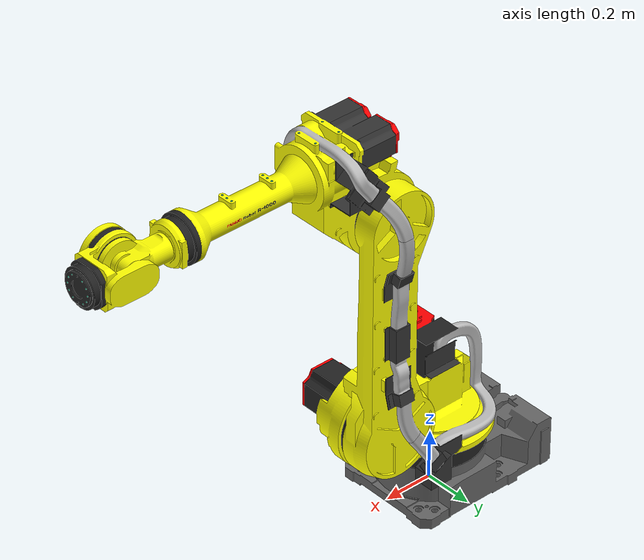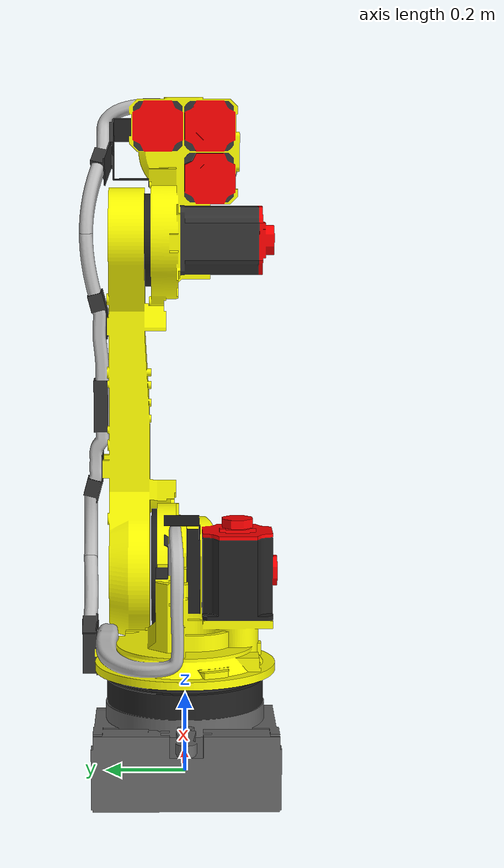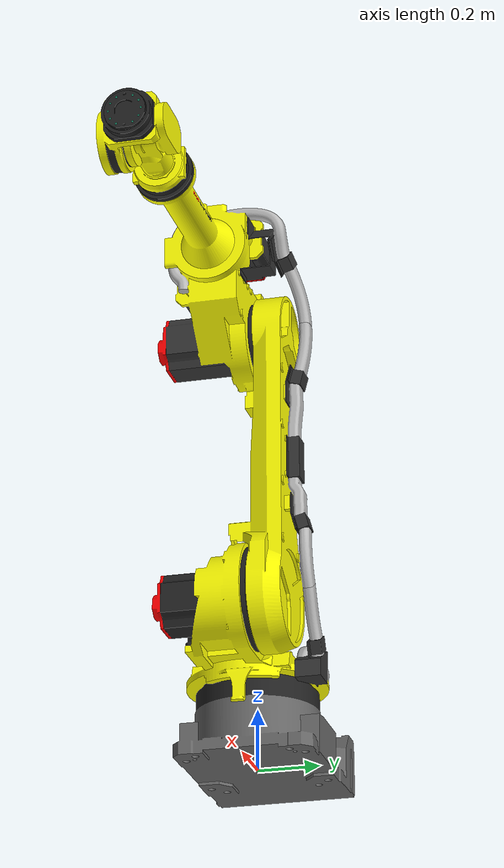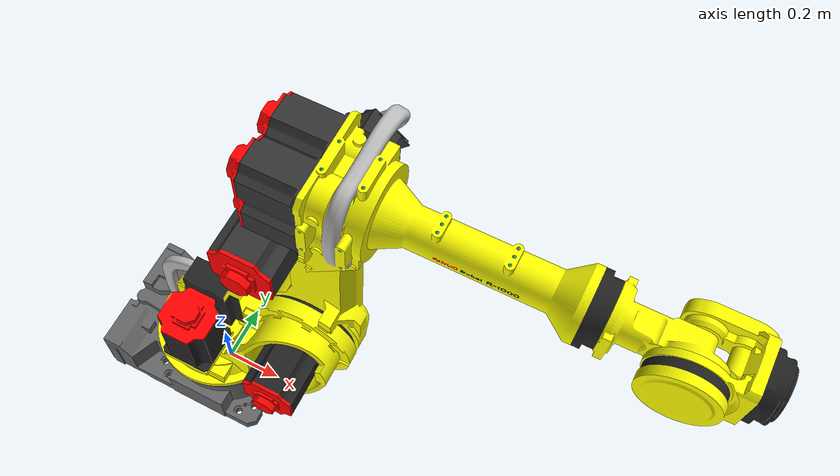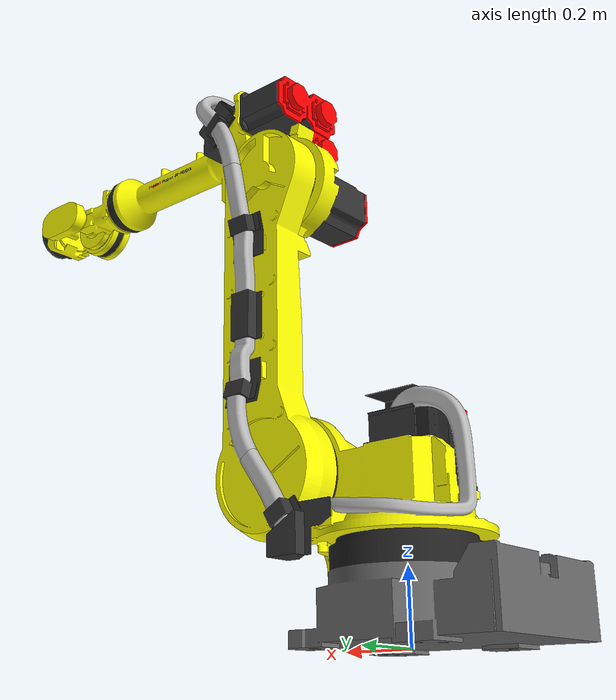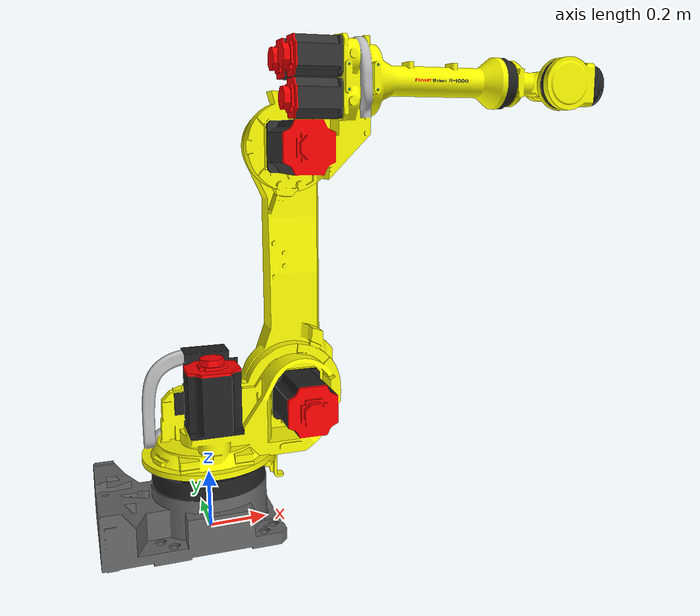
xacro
<?xml version="1.0" ?>
<robot name="r1000ia_100f" xmlns:xacro="http://wiki.ros.org/xacro">
  <xacro:include
    filename="$(find fanuc_r1000ia_description)/urdf/r1000ia_100f_urdf_macro.xacro"
  />

  <link name="world" />
  <link name="ee_link" />
  <xacro:r1000ia_100f parent="world" child="ee_link">
    <origin xyz="0 0 0" rpy="0 0 0" />
  </xacro:r1000ia_100f>
</robot>

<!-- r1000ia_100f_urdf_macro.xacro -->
<!--
SPDX-FileCopyrightText: 2025-2026, FANUC America Corporation
SPDX-FileCopyrightText: 2025-2026, FANUC CORPORATION
SPDX-License-Identifier: Apache-2.0
-->
<!-- URDF for R-1000/100F-22A(R-1000iA/100F) -->
<robot xmlns:xacro="http://wiki.ros.org/xacro">
  <xacro:macro
    name="r1000ia_100f"
    params="prefix=''
            parent
            *origin
            child"
  >

    <xacro:property name="j1_lower_limit" value="${radians(-180)}" />
    <xacro:property name="j2_lower_limit" value="${radians(-90)}" />
    <xacro:property name="j3_lower_limit" value="${radians(-82)}" />
    <xacro:property name="j4_lower_limit" value="${radians(-360)}" />
    <xacro:property name="j5_lower_limit" value="${radians(-125)}" />
    <xacro:property name="j6_lower_limit" value="${radians(-360)}" />

    <xacro:property name="j1_upper_limit" value="${radians(180)}" />
    <xacro:property name="j2_upper_limit" value="${radians(155)}" />
    <xacro:property name="j3_upper_limit" value="${radians(140)}" />
    <xacro:property name="j4_upper_limit" value="${radians(360)}" />
    <xacro:property name="j5_upper_limit" value="${radians(125)}" />
    <xacro:property name="j6_upper_limit" value="${radians(360)}" />

    <xacro:property name="j1_effort_limit" value="9000" />
    <xacro:property name="j2_effort_limit" value="20000" />
    <xacro:property name="j3_effort_limit" value="8000" />
    <xacro:property name="j4_effort_limit" value="3000" />
    <xacro:property name="j5_effort_limit" value="3000" />
    <xacro:property name="j6_effort_limit" value="2000" />

    <xacro:property name="j1_velocity_limit" value="${radians(130)}" />
    <xacro:property name="j2_velocity_limit" value="${radians(110)}" />
    <xacro:property name="j3_velocity_limit" value="${radians(120)}" />
    <xacro:property name="j4_velocity_limit" value="${radians(170)}" />
    <xacro:property name="j5_velocity_limit" value="${radians(170)}" />
    <xacro:property name="j6_velocity_limit" value="${radians(250)}" />

    <!-- links -->
    <link name="${prefix}base_link">
      <visual>
        <origin xyz="0 0 0" rpy="0 0 0" />
        <geometry>
          <mesh
            filename="package://fanuc_r1000ia_description/meshes/r1000ia_100f/visual/base.dae"
          />
        </geometry>
      </visual>
      <collision>
        <origin xyz="0 0 0" rpy="0 0 0" />
        <geometry>
          <mesh
            filename="package://fanuc_r1000ia_description/meshes/r1000ia_100f/collision/base.stl"
          />
        </geometry>
      </collision>
      <inertial>
        <mass value=" 137" />
        <origin xyz="-.129  .0048  .117" />
        <inertia
          ixx=" 2.71"
          ixy=" .241"
          ixz="-.158"
          iyy=" 6.08"
          iyz=" .015"
          izz=" 7.49"
        />
      </inertial>
    </link>

    <link name="${prefix}J1_link">
      <visual>
        <origin xyz="0 0 0" rpy="0 0 0" />
        <geometry>
          <mesh
            filename="package://fanuc_r1000ia_description/meshes/r1000ia_100f/visual/j1.dae"
          />
        </geometry>
      </visual>
      <collision>
        <origin xyz="0 0 0" rpy="0 0 0" />
        <geometry>
          <mesh
            filename="package://fanuc_r1000ia_description/meshes/r1000ia_100f/collision/j1.stl"
          />
        </geometry>
      </collision>
      <inertial>
        <mass value=" 185" />
        <origin xyz=" .133 -.00239 -.0395" />
        <inertia
          ixx=" 4.93"
          ixy="-.262"
          ixz="-.216"
          iyy=" 7.33"
          iyz=" .424"
          izz=" 7.6"
        />
      </inertial>
    </link>

    <link name="${prefix}J2_link">
      <visual>
        <origin xyz="0 0 0" rpy="0 0 0" />
        <geometry>
          <mesh
            filename="package://fanuc_r1000ia_description/meshes/r1000ia_100f/visual/j2.dae"
          />
        </geometry>
      </visual>
      <collision>
        <origin xyz="0 0 0" rpy="0 0 0" />
        <geometry>
          <mesh
            filename="package://fanuc_r1000ia_description/meshes/r1000ia_100f/collision/j2.stl"
          />
        </geometry>
      </collision>
      <inertial>
        <mass value=" 111" />
        <origin xyz=" .00598  .148  .394" />
        <inertia
          ixx=" 10.5"
          ixy="-.00257"
          ixz=" .00636"
          iyy=" 10.9"
          iyz="-.17"
          izz=" 1.04"
        />
      </inertial>
    </link>

    <link name="${prefix}J3_link">
      <visual>
        <origin xyz="0 0 0" rpy="0 0 0" />
        <geometry>
          <mesh
            filename="package://fanuc_r1000ia_description/meshes/r1000ia_100f/visual/j3.dae"
          />
        </geometry>
      </visual>
      <collision>
        <origin xyz="0 0 0" rpy="0 0 0" />
        <geometry>
          <mesh
            filename="package://fanuc_r1000ia_description/meshes/r1000ia_100f/collision/j3.stl"
          />
        </geometry>
      </collision>
      <inertial>
        <mass value=" 208" />
        <origin xyz=" .238  .011  .139" />
        <inertia
          ixx=" 5.25"
          ixy="-.0585"
          ixz="-1.92"
          iyy=" 13.4"
          iyz="-.209"
          izz=" 12.6"
        />
      </inertial>
    </link>

    <link name="${prefix}J4_link">
      <visual>
        <origin xyz="0 0 0" rpy="0 0 0" />
        <geometry>
          <mesh
            filename="package://fanuc_r1000ia_description/meshes/r1000ia_100f/visual/j4.dae"
          />
        </geometry>
      </visual>
      <collision>
        <origin xyz="0 0 0" rpy="0 0 0" />
        <geometry>
          <mesh
            filename="package://fanuc_r1000ia_description/meshes/r1000ia_100f/collision/j4.stl"
          />
        </geometry>
      </collision>
      <inertial>
        <mass value=" 7.97" />
        <origin xyz=" .929 -.00482  1.99E-16" />
        <inertia
          ixx=" .0233"
          ixy=" .00217"
          ixz=" 3.02E-15"
          iyy=" .0512"
          iyz=" .00000000000462"
          izz=" .0487"
        />
      </inertial>
    </link>

    <link name="${prefix}J5_link">
      <visual>
        <origin xyz="0 0 0" rpy="0 0 0" />
        <geometry>
          <mesh
            filename="package://fanuc_r1000ia_description/meshes/r1000ia_100f/visual/j5.dae"
          />
        </geometry>
      </visual>
      <collision>
        <origin xyz="0 0 0" rpy="0 0 0" />
        <geometry>
          <mesh
            filename="package://fanuc_r1000ia_description/meshes/r1000ia_100f/collision/j5.stl"
          />
        </geometry>
      </collision>
      <inertial>
        <mass value=" 15.5" />
        <origin xyz=" .0473 -.0132 -.00000000107" />
        <inertia
          ixx=" .0866"
          ixy="-.012"
          ixz="-.000000000378"
          iyy=" .107"
          iyz="-.00000000097"
          izz=" .13"
        />
      </inertial>
    </link>

    <link name="${prefix}J6_link">
      <visual>
        <origin xyz="0 0 0" rpy="0 0 0" />
        <geometry>
          <mesh
            filename="package://fanuc_r1000ia_description/meshes/r1000ia_100f/visual/j6.dae"
          />
        </geometry>
      </visual>
      <collision>
        <origin xyz="0 0 0" rpy="0 0 0" />
        <geometry>
          <mesh
            filename="package://fanuc_r1000ia_description/meshes/r1000ia_100f/collision/j6.stl"
          />
        </geometry>
      </collision>
      <inertial>
        <mass value=" .431" />
        <origin xyz=" .181  .000127  .000171" />
        <inertia
          ixx=" .000858"
          ixy="-.00000000000219"
          ixz="-.000000468"
          iyy=" .000438"
          iyz=" .0000000000661"
          izz=" .000443"
        />
      </inertial>
    </link>

    <!-- joints -->
    <joint name="${prefix}J1" type="revolute">
      <origin xyz=" 0  0  .45" rpy="0 0 0" />
      <parent link="${prefix}base_link" />
      <child link="${prefix}J1_link" />
      <axis xyz=" 0  0  1" />
      <limit
        lower="${j1_lower_limit}"
        upper="${j1_upper_limit}"
        effort="${j1_effort_limit}"
        velocity="${j1_velocity_limit}"
      />
    </joint>

    <joint name="${prefix}J2" type="revolute">
      <origin xyz=" .32  0  0" rpy="0 0 0" />
      <parent link="${prefix}J1_link" />
      <child link="${prefix}J2_link" />
      <axis xyz=" 0  1  0" />
      <limit
        lower="${j2_lower_limit}"
        upper="${j2_upper_limit}"
        effort="${j2_effort_limit}"
        velocity="${j2_velocity_limit}"
      />
    </joint>

    <joint name="${prefix}J3" type="revolute">
      <origin xyz=" 0  0  .87" rpy="0 0 0" />
      <parent link="${prefix}J2_link" />
      <child link="${prefix}J3_link" />
      <axis xyz=" 0 -1  0" />
      <limit
        lower="${j3_lower_limit}"
        upper="${j3_upper_limit}"
        effort="${j3_effort_limit}"
        velocity="${j3_velocity_limit}"
      />
    </joint>

    <joint name="${prefix}J4" type="revolute">
      <origin xyz=" 0  0  .225" rpy="0 0 0" />
      <parent link="${prefix}J3_link" />
      <child link="${prefix}J4_link" />
      <axis xyz="-1  0  0" />
      <limit
        lower="${j4_lower_limit}"
        upper="${j4_upper_limit}"
        effort="${j4_effort_limit}"
        velocity="${j4_velocity_limit}"
      />
    </joint>

    <joint name="${prefix}J5" type="revolute">
      <origin xyz=" 1.015  0  0" rpy="0 0 0" />
      <parent link="${prefix}J4_link" />
      <child link="${prefix}J5_link" />
      <axis xyz=" 0 -1  0" />
      <limit
        lower="${j5_lower_limit}"
        upper="${j5_upper_limit}"
        effort="${j5_effort_limit}"
        velocity="${j5_velocity_limit}"
      />
    </joint>

    <joint name="${prefix}J6" type="revolute">
      <origin xyz=" 0  0  0" rpy="0 0 0" />
      <parent link="${prefix}J5_link" />
      <child link="${prefix}J6_link" />
      <axis xyz="-1  0  0" />
      <limit
        lower="${j6_lower_limit}"
        upper="${j6_upper_limit}"
        effort="${j6_effort_limit}"
        velocity="${j6_velocity_limit}"
      />
    </joint>

    <!-- world coords -->
    <link name="${prefix}wbase" />
    <joint name="${prefix}base_link-wbase" type="fixed">
      <origin xyz=" 0  0  .45" rpy="0 0 0" />
      <parent link="${prefix}base_link" />
      <child link="${prefix}wbase" />
    </joint>

    <!-- flange coords -->
    <link name="${prefix}flange" />
    <joint name="${prefix}J6-flange" type="fixed">
      <origin xyz=" .19  0  0" rpy="0 0 0" />
      <parent link="${prefix}J6_link" />
      <child link="${prefix}flange" />
    </joint>

    <!-- FANUC flange coords -->
    <link name="${prefix}fanuc_flange" />
    <joint name="${prefix}flange-fanuc_flange" type="fixed">
      <origin xyz="0 0 0" rpy="${radians( 180)} ${radians(-90)} ${radians( 0)}" />
      <parent link="${prefix}flange" />
      <child link="${prefix}fanuc_flange" />
    </joint>

    <!-- Attach to parent -->
    <joint name="${prefix}base_joint" type="fixed">
      <xacro:insert_block name="origin" />
      <parent link="${parent}" />
      <child link="${prefix}base_link" />
    </joint>

    <!-- Attach child -->
    <joint name="${prefix}child_joint" type="fixed">
      <origin xyz="0 0 0" rpy="0 0 0" />
      <parent link="${prefix}flange" />
      <child link="${child}" />
    </joint>
  </xacro:macro>
</robot>
